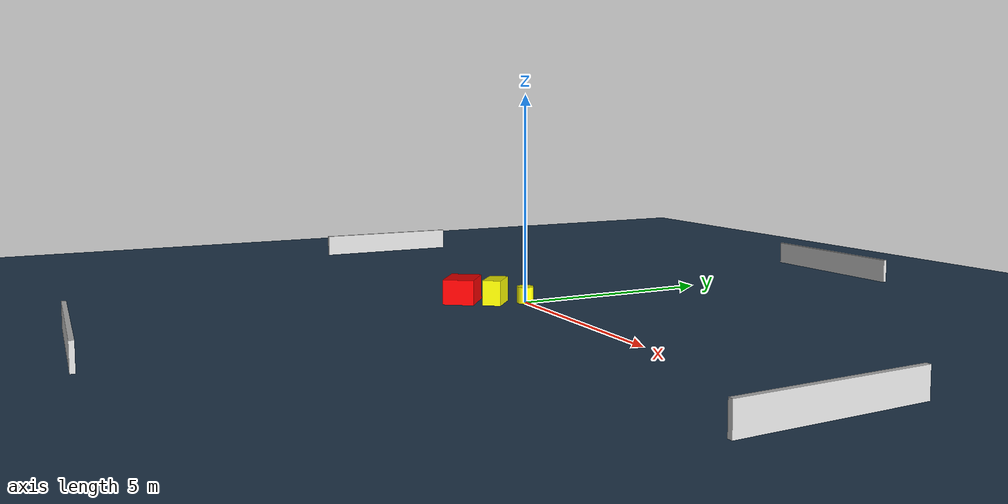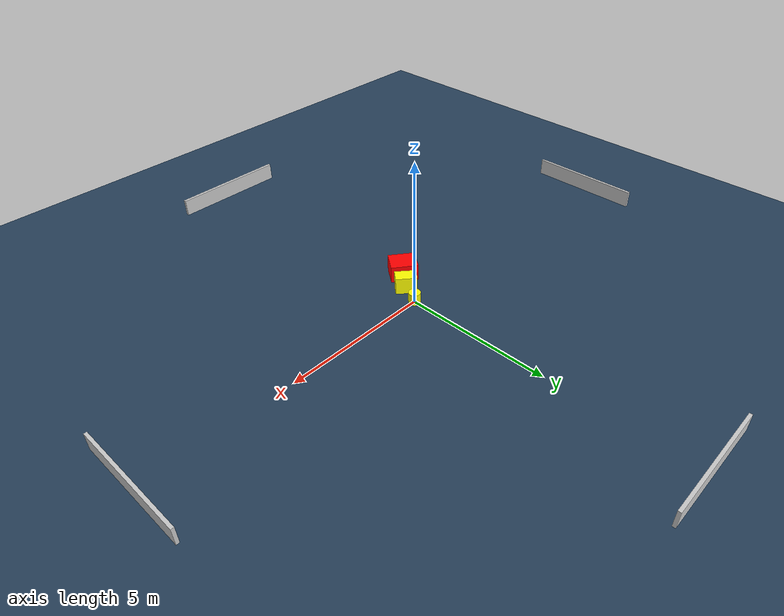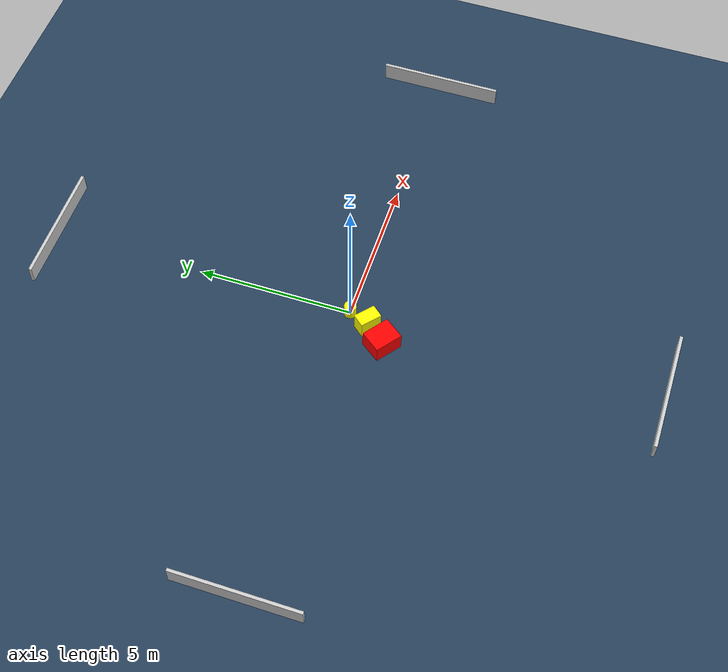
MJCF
<?xml version="1.0" ?>
<mujoco model="generated_environment">
  <option timestep="0.01" integrator="RK4" cone="elliptic"/>
  <default>
    <geom density="1"/>
  </default>
  <asset>
    <texture builtin="gradient" height="3072" name="skybox" rgb1="0.3 0.5 0.7" rgb2="0 0 0" type="skybox" width="512"/>
    <texture builtin="checker" height="300" name="groundplane" rgb1="0.2 0.3 0.4" rgb2="0.1 0.2 0.3" type="2d" width="300"/>
    <material name="groundplane" reflectance="0.2" texrepeat="5 5" texture="groundplane"/>
  </asset>
  <worldbody>
    <light dir="0 0 -1" directional="true" pos="0 0 1.5"/>
    <geom condim="3" friction="0.5 0.005 0.001" material="groundplane" name="floor" pos="0 0 0" size="0 0 0.05" type="plane"/>
    <body name="walls">
      <geom name="wall_1" condim="4" pos="-10.0 0.0 0.3" rgba="0.800000011920929 0.800000011920929 0.800000011920929 1.0" size="0.05 2.0 0.3" type="box"/>
      <geom name="wall_2" condim="4" pos="10.0 0.0 0.3" rgba="0.800000011920929 0.800000011920929 0.800000011920929 1.0" size="0.05 2.0 0.3" type="box"/>
      <geom name="wall_3" condim="4" pos="0.0 -10.0 0.3" rgba="0.800000011920929 0.800000011920929 0.800000011920929 1.0" size="2.0 0.05 0.3" type="box"/>
      <geom name="wall_4" condim="4" pos="0.0 10.0 0.3" rgba="0.800000011920929 0.800000011920929 0.800000011920929 1.0" size="2.0 0.05 0.3" type="box"/>
    </body>
    <body name="robot">
      <joint name="joint_x" type="slide" pos="0 0 0" axis="1 0 0"/>
      <joint name="joint_y" type="slide" pos="0 0 0" axis="0 1 0"/>
      <geom name="robot" type="cylinder" pos="0.0 0.0 0.2" size="0.2 0.2 0.0" mass="5.0" friction="1.0 0.005 0.0001" condim="4" rgba="1.0 1.0 0.0 1.0"/>
    </body>
    <body name="obstacle_1_movable">
      <geom name="obstacle_1_movable" condim="4" pos="-0.29695469168422844 -0.6635461416552344 0.3" euler="0 0 139.5422927549629" friction="0.0 0.005 0.001" rgba="1.0 1.0 0.0 1.0" size="0.35775664086095926 0.22141599393549552 0.3" type="box" mass="0.1"/>
      <joint type="free"/>
    </body>
    <body name="obstacle_2_static">
      <geom name="obstacle_2_static" condim="4" pos="-0.8243180397957681 -1.2958220737358455 0.3" euler="0 0 53.019610146035475" friction="0.0 0.005 0.001" rgba="1.0 0.0 0.0 1.0" size="0.3753733206957217 0.45912230828327105 0.3" type="box"/>
    </body>
  </worldbody>
  <actuator>
    <motor name="actuator_x" joint="joint_x" gear="1" ctrlrange="-1 1"/>
    <motor name="actuator_y" joint="joint_y" gear="1" ctrlrange="-1 1"/>
  </actuator>
</mujoco>
